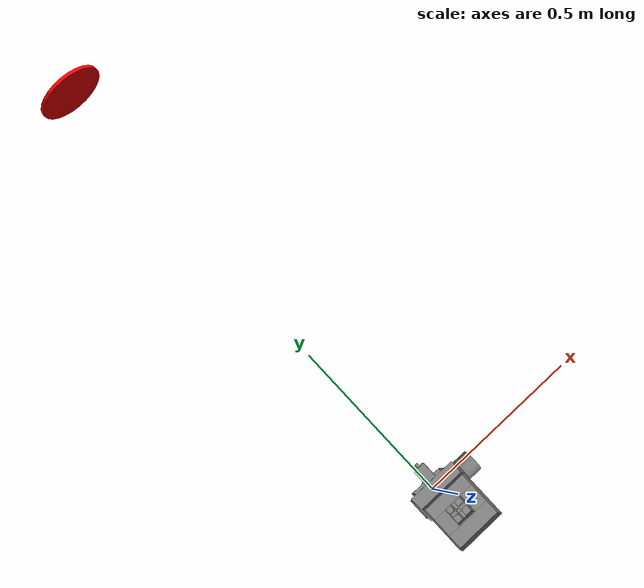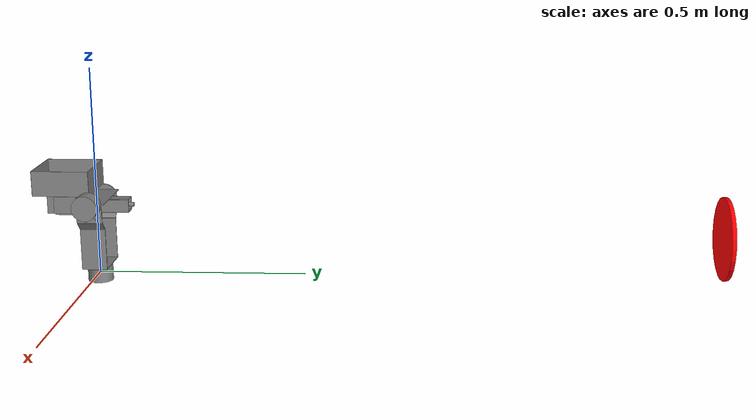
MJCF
<mujoco>

    <compiler coordinate="local" angle="degree" inertiafromgeom="auto"/>

    <option timestep="0.0005" apirate="100" wind="0 0 0" density="1.2" viscosity="0" cone="elliptic">
        <flag sensornoise="enable"/>
    </option>

    <worldbody>

        <light diffuse=".5 .5 .5" pos="0 0 3" dir="0 0 -1"/>
        <!--geom type="plane" pos="0 0 -0.325" size="1 1 0.1" contype="1" conaffinity="1"/-->

        <body name="base" pos="0 0 0">
            <geom type="cylinder" condim="6" size="0.03 0.02" friction="1 0.005 0.0001"/>
            <body name="frame" pos="0 0 0.0215">
                <geom name="bottom" type="box" condim="3" size="0.05 0.03 0.0015" friction="1 0.005 0.0001"/>

                <body name="right" pos="0.05 0 0.05">
                    <geom name="rside" type="box" condim="3" size="0.0015 0.03 0.05" friction="1 0.005 0.0001"/>
                    <geom name="rtop_slope" type="box" condim="3" pos="0.0106 0 0.0606" size="0.0015 0.03 0.015" euler="0 45 0" friction="1 0.005 0.0001"/>

                    <body name="rtop_platform" pos="0.0212 0 0.0712">
                        <geom name="rstand" type="box" condim="3" pos="0 0 0.015" size="0.0015 0.03 0.015" friction="1 0.005 0.0001"/>
                        <geom name="rcircle" type="cylinder" condim="3" pos="0 0 0.03" size="0.03 0.0015" euler="0 90 0" friction="1 0.005 0.0001"/>

                        <body name="gun_platform" pos="0 0 0.045">
                            <geom type="cylinder" condim="3" pos="0.0227 0 0" size="0.03 0.02" euler="0 90 0" friction="1 0.005 0.0001"/>
                            <joint name="motor2" axis="1 0 0" limited="true" range="0 45" stiffness="0.01" frictionloss="0.01" damping=".06"/>

                            <body name="gun" pos="0 0 0">
                                <geom name="rotating_platform" type="box" condim="3" pos="-0.0712 -0.0015 0" size="0.0712 0.0370 0.0015" friction="1 0.005 0.0001"/>

                                <body name="rod" pos="-0.0712 0 0">
                                    <body name="bullet_holder" pos="0 0 0.0475">
                                        <geom name="frontSide" type="box" condim="3" size="0.0670 0.0005 0.03" friction="1 0.005 0.0001"/>
                                        <geom name="rightSide" type="box" condim="3" pos="0.0670 -0.0670 0" size="0.0005 0.0670 0.03" friction="1 0.005 0.0001"/>
                                        <geom name="leftSide" type="box" condim="3" pos="-0.0670 -0.0670 0" size="0.0005 0.0670 0.03" friction="1 0.005 0.0001"/>
                                        <geom name="rearSide" type="box" condim="3" pos="0 -0.1340 0" size="0.0670 0.0005 0.03" friction="1 0.005 0.0001"/>
                                        <geom name="bottomFront" type="box" condim="3" pos="0 -0.0200 -0.03" size="0.0670 0.0200 0.0005" friction="1 0.005 0.0001"/>
                                        <geom name="bottomRear" type="box" condim="3" pos="0 -0.1140 -0.03" size="0.0670 0.0200 0.0005" friction="1 0.005 0.0001"/>
                                        <geom name="bottomRight" type="box" condim="3" pos="0.0470 -0.0670 -0.03" size="0.0200 0.0270 0.0005" friction="1 0.005 0.0001"/>
                                        <geom name="bottomLeft" type="box" condim="3" pos="-0.0470 -0.0670 -0.03" size="0.0200 0.0270 0.0005" friction="1 0.005 0.0001"/>

                                        <body name="bullet_feeder" pos="0 -0.0670 -0.03">
                                            <geom name="frontSide_bf" type="box" condim="3" pos="0 0.0290 -0.0100" size="0.0270 0.0035 0.0100" friction="1 0.005 0.0001" contype="1" conaffinity="1"/>
                                            <geom name="rightSide_bf" type="box" condim="3" pos="0.0310 0 -0.0250" size="0.0055 0.0270 0.0250" friction="1 0.005 0.0001" contype="1" conaffinity="1"/>
                                            <geom name="leftSide_bf" type="box" condim="3" pos="-0.0310 0 -0.0250" size="0.0055 0.0270 0.0250" friction="1 0.005 0.0001" contype="1" conaffinity="1"/>
                                            <geom name="rearSide_bf" type="box" condim="3" pos="0 -0.0340 -0.0250" size="0.0365 0.0085 0.0250" friction="1 0.005 0.0001" contype="1" conaffinity="1"/>
                                            <geom name="bottom_bf" type="box" condim="3" pos="0 0 -0.0520" size="0.0270 0.0270 0.0035" friction="1 0.005 0.0001" contype="1" conaffinity="1"/>

                                            <body name="barrel" pos="0 0.0270 -0.0350">
                                                <geom name="bottom_barrel" type="box" condim="3" pos="0 0.0600 -0.0150" size="0.015 0.0600 0.0015" friction="1 0.005 0.0001"/>
                                                <geom name="top_barrel" type="box" condim="3" pos="0 0.0600 0.0150" size="0.015 0.0600 0.0015" friction="1 0.005 0.0001"/>
                                                <geom name="right_barrel" type="box" condim="3" pos="0.0150 0.0600 0" size="0.0015 0.0600 0.015" friction="1 0.005 0.0001"/>
                                                <geom name="left_barrel" type="box" condim="3" pos="-0.0150 0.0600 0" size="0.0015 0.0600 0.015" friction="1 0.005 0.0001"/>

                                                <body name="shooting_mechanism" pos="0 0.0200 0">
                                                    <geom name="connector_right" type="box" condim="3" pos="0.0210 0 0" size="0.006 0.0200 0.015" friction="1 0.005 0.0001"/>
                                                    <geom name="connector_left" type="box" condim="3" pos="-0.0210 0 0" size="0.006 0.0200 0.015" friction="1 0.005 0.0001"/>

                                                    <body name="rFriction_wheels" pos="0.0260 0 0">
                                                        <geom name="rightWheel" type="cylinder" condim="3" size="0.02 0.005" friction="5 0.01 0.01"/>
                                                        <joint name="rFricWheel" axis="0 0 1" limited="false" damping=".05"/>
                                                    </body>

                                                    <body name="lFriction_wheels" pos="-0.0260 0 0">
                                                        <geom name="lFricWheel" type="cylinder" condim="3" size="0.02 0.005" friction="5 0.01 0.001"/>
                                                        <joint name="lFricWheel" axis="0 0 1" limited="false" damping=".05"/>
                                                    </body>
                                                </body>

                                                <body name="head_of_barrel" pos="0 0.12 0">
                                                    <site name="devices" type="cylinder" size="0.005 0.010" euler="-90 0 0"/>
                                                </body>

                                                <body name="camera" pos="0 0.12 0.1">
                                                    <camera name="cam1" mode="fixed" euler="90 0 0" pos="0 0 0"/>
                                                </body>
                                                <body name="camera2" pos="0 0.12 0">
                                                    <camera name="cam2" mode="fixed" euler="90 0 0" pos="0 0 0"/>
                                                </body>

                                            </body>

                                            <body name="reloading_wheel" pos="0 0 -0.0380">
                                                <geom name="reloadWheel" type="cylinder" condim="3" size="0.005 0.0150" friction="5 0.01 0.01"/>
                                                <geom name="stick1" type="capsule" condim="3" size="0.006 0.0200" euler="0 90 0" friction="5 0.01 0.01"/>
                                                <geom name="stick2" type="capsule" condim="3" size="0.006 0.0200" euler="90 0 0" friction="5 0.01 0.01"/>
                                                <geom name="stick3" type="capsule" condim="3" size="0.005 0.0070" euler="90 45 0" friction="5 0.01 0.01"/>
                                                <geom name="stick4" type="capsule" condim="3" size="0.005 0.0070" euler="90 135 0" friction="5 0.01 0.01"/>
                                                <joint name="reloadMotor" axis="0 0 1" limited="false" damping=".05"/>
                                            </body>

                                        </body>
                                    </body>
                                </body>
                            </body>
                        </body>
                    </body>
                </body>

                <body name="left" pos="-0.05 0 0.05">
                    <geom name="lside" type="box" condim="3" size="0.0015 0.03 0.05" friction="1 0.005 0.0001"/>
                    <geom name="ltop_slope" type="box" condim="3" pos="-0.0106 0 0.0606" size="0.0015 0.03 0.015" euler="0 -45 0" friction="1 0.005 0.0001"/>

                    <body name="ltop_platform" pos="-0.0212 0 0.0712">
                        <geom name="lstand" type="box" condim="3" pos="0 0 0.015" size="0.0015 0.03 0.015" friction="1 0.005 0.0001"/>
                        <geom name="lcircle" type="cylinder" condim="3" pos="0 0 0.03" size="0.03 0.0015" euler="0 90 0" friction="1 0.005 0.0001"/>
                    </body>
                </body>

                <joint name="motor1" axis="0 0 1" limited="true" range="-45 45" stiffness="0.01" frictionloss="0.01" damping=".06"/>
            </body>
        </body>

        <body name="target" pos="0 1.5 0.1">
            <geom rgba="1 0 0 1" type="cylinder" size="0.1 0.005" euler="90 0 0" contype="1" conaffinity="1" mass="1"/>
            <joint name="target_slidez" type="slide" pos="0 0 0" axis="0 0 1" range="-10.3213 10.3" damping="1.0"/>
            <joint name="target_slidex" type="slide" pos="0 0 0" axis="1 0 0" range="-10.3213 10.3" damping="1.0"/>
        </body>

    </worldbody>

    <actuator>
        <velocity joint="motor1" gear="1" forcelimited="true" forcerange="-10 10" ctrllimited="true" ctrlrange="-20 20"/>
        <velocity joint="motor2" gear="1" forcelimited="true" forcerange="-10 10" ctrllimited="true" ctrlrange="-10 10"/>
    </actuator>

    <sensor>
        <jointpos name="motor1_encoder" joint="motor1" noise="0.001"/>
        <jointpos name="motor2_encoder" joint="motor2" noise="0.001"/>
        <rangefinder name="target_detector" site="devices"/>
    </sensor>

</mujoco>
